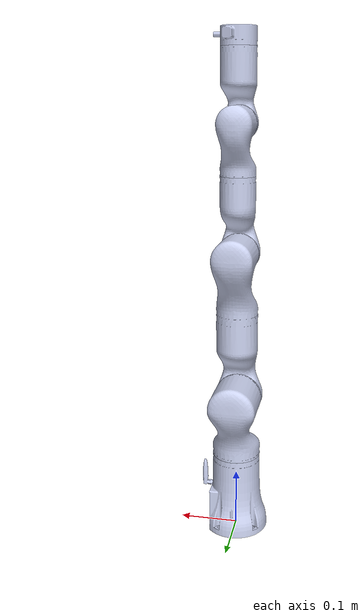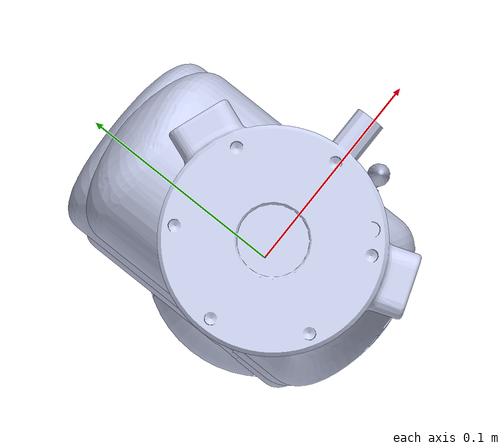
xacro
<?xml version="1.0"?>
<robot name="rm65_B_right" xmlns:xacro="http://www.ros.org/wiki/xacro">
  <xacro:property name="mesh_path" value="package://dual_65B_arm_robot/meshes/" />
  <!-- Macro to define a generic link with mass, inertia, and visual -->
  <xacro:macro name="visual_collision" params="mesh">
    <visual>
      <origin xyz="0 0 0" rpy="0 0 0" />
      <geometry>
        <mesh filename="${mesh_path}${mesh}" />
      </geometry>
      <material name="">
        <color rgba="0.79216 0.81961 0.93333 1" />
      </material>
    </visual>
    <collision>
      <origin xyz="0 0 0" rpy="0 0 0" />
      <geometry>
        <mesh filename="${mesh_path}${mesh}" />
      </geometry>
    </collision>
  </xacro:macro>
  <link name="r_base_link">
    <inertial>
      <origin xyz="-0.0003328 -2.2058E-05 0.060153" rpy="0 0 0" />
      <mass value="0.83984" />
      <inertia
        ixx="0.0017115"
        ixy="4.0275E-06"
        ixz="-4.7032E-05"
        iyy="0.0016829"
        iyz="1.8664E-06"
        izz="0.00089154" />
    </inertial>
    <xacro:visual_collision mesh="r_base_link.STL" />
  </link>
  <link name="r_link1">
    <inertial>
      <origin xyz="-2.8998E-07 0.021107 -0.025188" rpy="0 0 0" />
      <mass value="0.59353" />
      <inertia
        ixx="0.0012661"
        ixy="-5.3526E-09"
        ixz="-2.0479E-09"
        iyy="0.0011816"
        iyz="-0.00021118"
        izz="0.00056131" />
    </inertial>
    <xacro:visual_collision mesh="r_link1.STL" />
  </link>
  <link
    name="r_link2">
    <inertial>
      <origin
        xyz="0.15226 2.505E-07 -0.0062027"
        rpy="0 0 0" />
      <mass
        value="0.86416" />
      <inertia
        ixx="0.00063253"
        ixy="1.9052E-09"
        ixz="0.00042162"
        iyy="0.0020527"
        iyz="3.5874E-09"
        izz="0.0019528" />
    </inertial>
    <xacro:visual_collision mesh="r_link2.STL" />
  </link>
  <link
    name="r_link3">
    <inertial>
      <origin
        xyz="4.7421E-06 -0.059592 0.010268"
        rpy="0 0 0" />
      <mass
        value="0.28963" />
      <inertia
        ixx="0.00063737"
        ixy="-6.2554E-08"
        ixz="-3.5031E-08"
        iyy="0.00015649"
        iyz="-0.00014461"
        izz="0.00061418" />
    </inertial>
    <xacro:visual_collision mesh="r_link3.STL" />
  </link>
  <link
    name="r_link4">
    <inertial>
      <origin
        xyz="2.9088E-07 -0.018042 -0.02154"
        rpy="0 0 0" />
      <mass
        value="0.23942" />
      <inertia
        ixx="0.00028595"
        ixy="-2.3541E-09"
        ixz="1.386E-09"
        iyy="0.00026273"
        iyz="4.424E-05"
        izz="0.0001199" />
    </inertial>
    <xacro:visual_collision mesh="r_link4.STL" />
  </link>
   <link
    name="r_link5">
    <inertial>
      <origin
        xyz="4.2478E-06 -0.059381 0.007067"
        rpy="0 0 0" />
      <mass
        value="0.21879" />
      <inertia
        ixx="0.00035053"
        ixy="-2.8579E-08"
        ixz="-1.655E-08"
        iyy="0.00010492"
        iyz="-7.824E-05"
        izz="0.00033447" />
    </inertial>
    <xacro:visual_collision mesh="r_link5.STL" />
  </link>
  <link
    name="r_link6">
    <inertial>
      <origin
        xyz="0.00081845 1.3321E-05 0.019292"
        rpy="0 0 0" />
      <mass
        value="0.064802" />
      <inertia
        ixx="2.102E-05"
        ixy="-2.2708E-08"
        ixz="-2.438E-08"
        iyy="1.7985E-05"
        iyz="-1.0173E-08"
        izz="3.1728E-05" />
    </inertial>
    <xacro:visual_collision mesh="r_link6.STL" />
  </link>

   <joint
    name="r_joint1"
    type="revolute">
    <origin
      xyz="0 0 0.2405"
      rpy="0 0 0" />
    <parent
      link="r_base_link" />
    <child
      link="r_link1" />
    <axis
      xyz="0 0 1" />
    <limit
      lower="-3.11"
      upper="3.11"
      effort="60"
      velocity="3.14" />
  </joint>
   <joint
    name="r_joint2"
    type="revolute">
    <origin
      xyz="0 0 0"
      rpy="1.5708 -1.5708 0" />
    <parent
      link="r_link1" />
    <child
      link="r_link2" />
    <axis
      xyz="0 0 1" />
    <limit
      lower="-2.27"
      upper="2.27"
      effort="60"
      velocity="3.14" />
  </joint>
   <joint
    name="r_joint3"
    type="revolute">
    <origin
      xyz="0.256 0 0"
      rpy="0 0 1.5708" />
    <parent
      link="r_link2" />
    <child
      link="r_link3" />
    <axis
      xyz="0 0 1" />
    <limit
      lower="-2.36"
      upper="2.36"
      effort="30"
      velocity="3.925" />
  </joint>
  <joint
    name="r_joint4"
    type="revolute">
    <origin
      xyz="0 -0.21 -0.00030007"
      rpy="1.5708 0 0" />
    <parent
      link="r_link3" />
    <child
      link="r_link4" />
    <axis
      xyz="0 0 1" />
    <limit
      lower="-3.11"
      upper="3.11"
      effort="10"
      velocity="3.925" />
  </joint>
  <joint
    name="r_joint5"
    type="revolute">
    <origin
      xyz="0 0 0"
      rpy="-1.5708 0 0" />
    <parent
      link="r_link4" />
    <child
      link="r_link5" />
    <axis
      xyz="0 0 1" />
    <limit
      lower="-2.23"
      upper="2.23"
      effort="10"
      velocity="3.925" />
  </joint>
  <joint
    name="r_joint6"
    type="revolute">
    <origin
      xyz="0 -0.11203 -0.00029971"
      rpy="1.5708 3.1415 0" />
    <parent
      link="r_link5" />
    <child
      link="r_link6" />
    <axis
      xyz="0 0 1" />
    <limit
      lower="-6.28"
      upper="6.28"
      effort="10"
      velocity="3.925" />
  </joint>
</robot>
